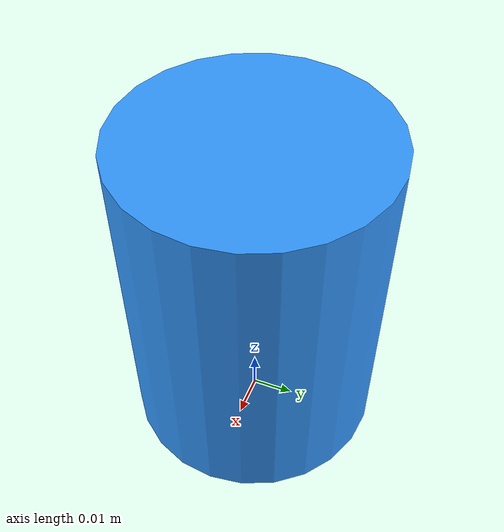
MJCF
<mujoco model="microduck_target">
    <compiler angle="radian" autolimits="true"/>

    <worldbody>
        <body name="target" pos="0 0 0">
            <geom type="cylinder" name="target_geom" size="0.03 0.04" pos="0 0 0.04"
                  rgba="0.2 0.6 1.0 1" mass="0.2"/>
        </body>
    </worldbody>
</mujoco>
